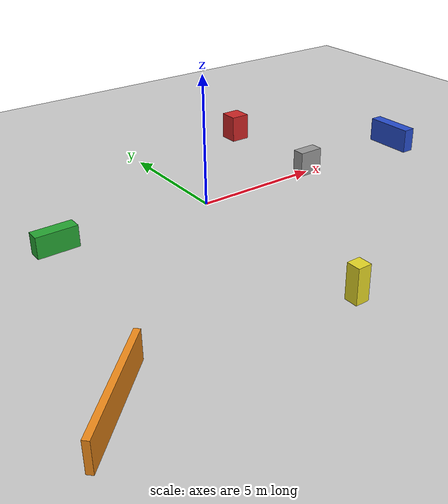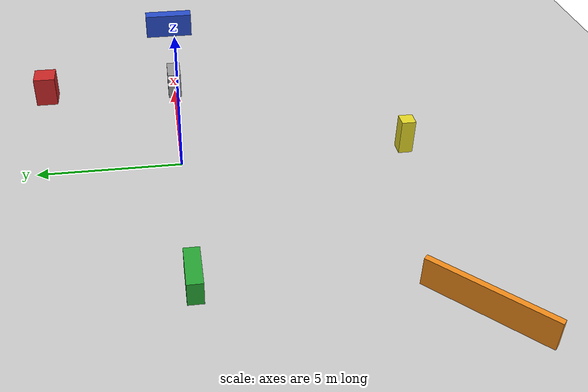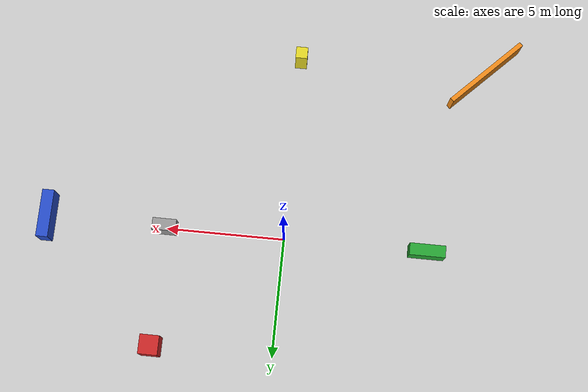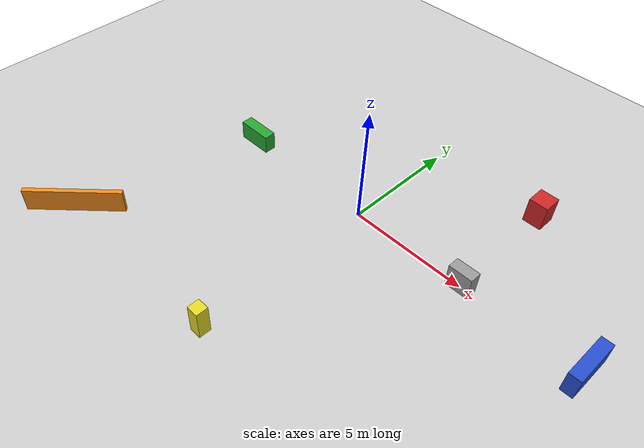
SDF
<?xml version="1.0"?>
<sdf version="1.6">
  <world name="mps_test">

    <!-- Physics: real-time factor 1.0, 1ms timestep -->
    <physics type="ode">
      <real_time_update_rate>1000</real_time_update_rate>
      <max_step_size>0.001</max_step_size>
      <real_time_factor>1</real_time_factor>
      <ode>
        <solver>
          <type>quick</type>
          <iters>150</iters>
          <precon_iters>0</precon_iters>
          <sor>1.400000</sor>
        </solver>
        <constraints>
          <cfm>0.00001</cfm>
          <erp>0.2</erp>
          <contact_max_correcting_vel>2000</contact_max_correcting_vel>
          <contact_surface_layer>0.01</contact_surface_layer>
        </constraints>
      </ode>
    </physics>

    <!-- Lighting -->
    <include>
      <uri>model://sun</uri>
    </include>

    <!-- Ground plane -->
    <include>
      <uri>model://ground_plane</uri>
    </include>

    <!-- North ~5m -->
    <model name="box_N">
      <static>true</static>
      <pose>5 0 0.5 0 0 0</pose>
      <link name="link">
        <collision name="col"><geometry><box><size>1 0.5 1</size></box></geometry></collision>
        <visual name="vis"><geometry><box><size>1 0.5 1</size></box></geometry>
          <material><script><uri>file://media/materials/scripts/gazebo.material</uri>
            <name>Gazebo/Grey</name></script></material>
        </visual>
      </link>
    </model>

    <!-- NE ~7m -->
    <model name="box_NE">
      <static>true</static>
      <pose>5 5 0.5 0 0 0</pose>
      <link name="link">
        <collision name="col"><geometry><box><size>0.8 0.8 1.2</size></box></geometry></collision>
        <visual name="vis"><geometry><box><size>0.8 0.8 1.2</size></box></geometry>
          <material><script><uri>file://media/materials/scripts/gazebo.material</uri>
            <name>Gazebo/Red</name></script></material>
        </visual>
      </link>
    </model>

    <!-- East ~10m -->
    <model name="box_E">
      <static>true</static>
      <pose>10 0 0.5 0 0 0</pose>
      <link name="link">
        <collision name="col"><geometry><box><size>0.5 2 1</size></box></geometry></collision>
        <visual name="vis"><geometry><box><size>0.5 2 1</size></box></geometry>
          <material><script><uri>file://media/materials/scripts/gazebo.material</uri>
            <name>Gazebo/Blue</name></script></material>
        </visual>
      </link>
    </model>

    <!-- South ~6m -->
    <model name="box_S">
      <static>true</static>
      <pose>-6 0 0.5 0 0 0</pose>
      <link name="link">
        <collision name="col"><geometry><box><size>1.5 0.5 0.8</size></box></geometry></collision>
        <visual name="vis"><geometry><box><size>1.5 0.5 0.8</size></box></geometry>
          <material><script><uri>file://media/materials/scripts/gazebo.material</uri>
            <name>Gazebo/Green</name></script></material>
        </visual>
      </link>
    </model>

    <!-- West ~8m -->
    <model name="box_W">
      <static>true</static>
      <pose>0 -8 0.5 0 0 0</pose>
      <link name="link">
        <collision name="col"><geometry><box><size>0.5 0.5 1.5</size></box></geometry></collision>
        <visual name="vis"><geometry><box><size>0.5 0.5 1.5</size></box></geometry>
          <material><script><uri>file://media/materials/scripts/gazebo.material</uri>
            <name>Gazebo/Yellow</name></script></material>
        </visual>
      </link>
    </model>

    <!-- SW diagonal ~12m -->
    <model name="wall_SW">
      <static>true</static>
      <pose>-8 -8 0.5 0 0 0.785</pose>
      <link name="link">
        <collision name="col"><geometry><box><size>4 0.2 1</size></box></geometry></collision>
        <visual name="vis"><geometry><box><size>4 0.2 1</size></box></geometry>
          <material><script><uri>file://media/materials/scripts/gazebo.material</uri>
            <name>Gazebo/Orange</name></script></material>
        </visual>
      </link>
    </model>

  </world>
</sdf>
